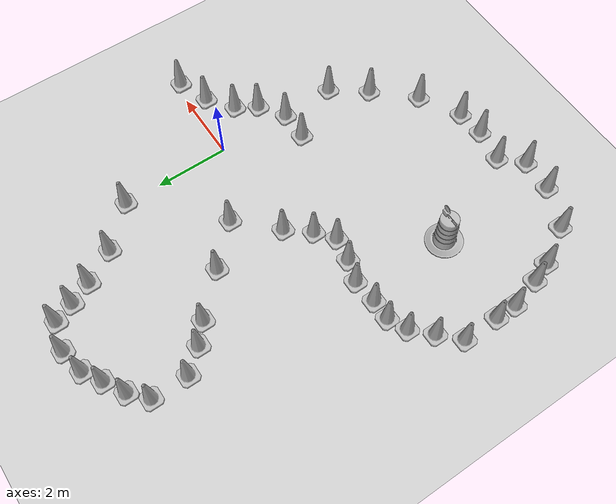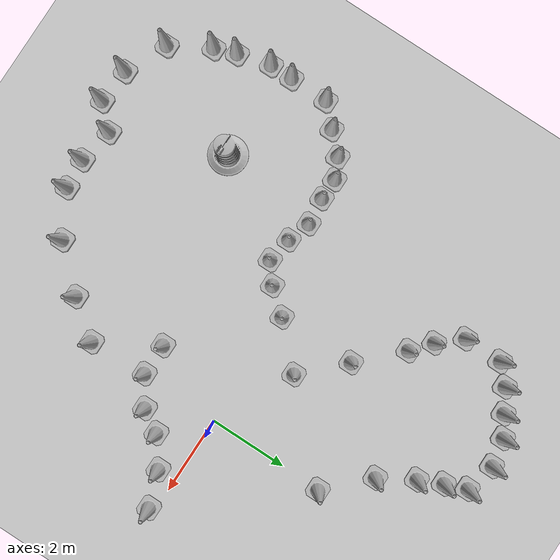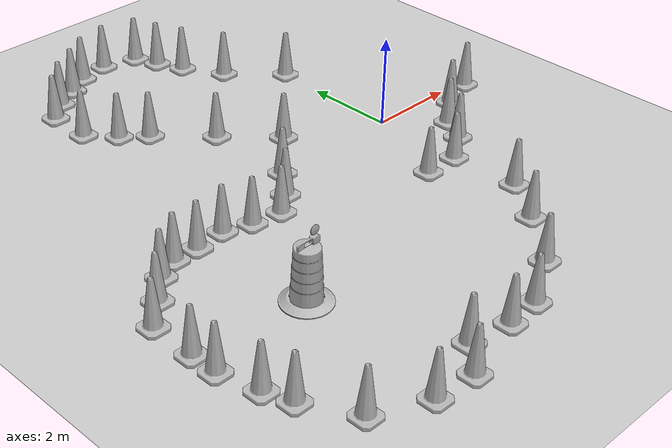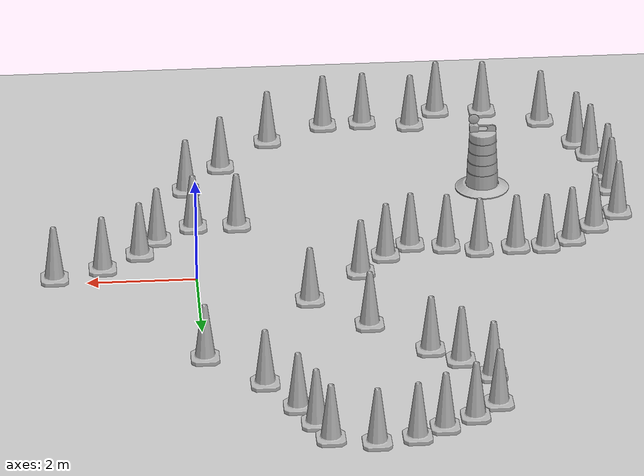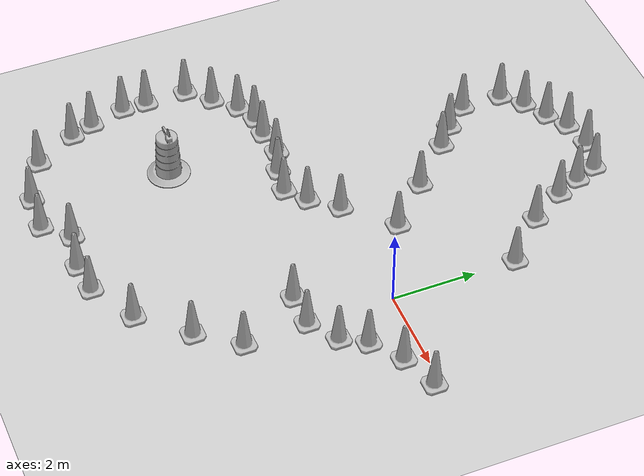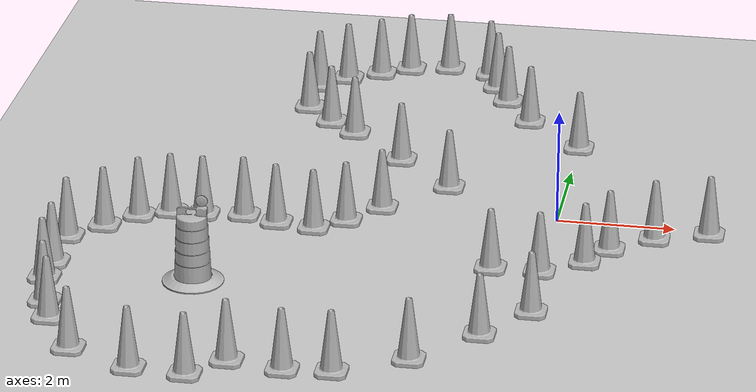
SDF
<sdf version="1.7">
 <world name="default">
  <light name="sun" type="directional">
   <pose>0 0 10 0 -0 0</pose>
   <diffuse>0.8 0.8 0.8 1</diffuse>
   <specular>0.2 0.2 0.2 1</specular>
   <attenuation>
    <range>1000</range>
    <constant>0.9</constant>
    <linear>0.01</linear>
    <quadratic>0.001</quadratic>
   </attenuation>
   <direction>-0.5 0.1 -0.9</direction>
   <spot><inner_angle>0</inner_angle><outer_angle>0</outer_angle><falloff>0</falloff></spot>
  </light>
  <model name="ground_plane">
   <static>1</static>
   <link name="link">
    <collision name="collision">
     <geometry><plane><normal>0 0 1</normal><size>100 100</size></plane></geometry>
     <surface>
      <contact><collide_bitmask>65535</collide_bitmask></contact>
      <friction><ode><mu>100</mu><mu2>50</mu2></ode></friction>
     </surface>
    </collision>
    <visual name="visual">
     <cast_shadows>0</cast_shadows>
     <geometry><plane><normal>0 0 1</normal><size>100 100</size></plane></geometry>
     <material>
      <script><uri>file://media/materials/scripts/gazebo.material</uri><name>Gazebo/Grey</name></script>
     </material>
    </visual>
   </link>
  </model>
  <gravity>0 0 -9.8</gravity>
  <magnetic_field>6e-06 2.3e-05 -4.2e-05</magnetic_field>
  <atmosphere type="adiabatic"/>
  <physics type="ode">
   <max_step_size>0.001</max_step_size>
   <real_time_factor>1</real_time_factor>
   <real_time_update_rate>1000</real_time_update_rate>
  </physics>
  <scene><ambient>0.4 0.4 0.4 1</ambient><background>0.7 0.7 0.7 1</background><shadows>1</shadows></scene>
  <audio><device>default</device></audio>
  <spherical_coordinates>
   <surface_model>EARTH_WGS84</surface_model>
   <latitude_deg>0</latitude_deg>
   <longitude_deg>0</longitude_deg>
   <elevation>0</elevation>
   <heading_deg>0</heading_deg>
  </spherical_coordinates>
  <model name="Construction Cone">
   <link name="link">
    <collision name="collision">
     <geometry>
      <mesh><scale>10 10 10</scale><uri>model://construction_cone/meshes/construction_cone.dae</uri></mesh>
     </geometry>
    </collision>
    <visual name="visual">
     <geometry>
      <mesh><scale>10 10 10</scale><uri>model://construction_cone/meshes/construction_cone.dae</uri></mesh>
     </geometry>
    </visual>
    <inertial>
     <inertia><ixx>1</ixx><ixy>0</ixy><ixz>0</ixz><iyy>1</iyy><iyz>0</iyz><izz>1</izz></inertia>
     <mass>1</mass>
    </inertial>
   </link>
   <pose>-0.846515 -2.02841 -0 0 -1e-06 0</pose>
  </model>
  <model name="Construction Cone_clone">
   <link name="link">
    <collision name="collision">
     <geometry>
      <mesh><scale>10 10 10</scale><uri>model://construction_cone/meshes/construction_cone.dae</uri></mesh>
     </geometry>
    </collision>
    <visual name="visual">
     <geometry>
      <mesh><scale>10 10 10</scale><uri>model://construction_cone/meshes/construction_cone.dae</uri></mesh>
     </geometry>
    </visual>
    <inertial>
     <inertia><ixx>1</ixx><ixy>0</ixy><ixz>0</ixz><iyy>1</iyy><iyz>0</iyz><izz>1</izz></inertia>
     <mass>1</mass>
    </inertial>
   </link>
   <pose>-0.033075 -2.02746 -0 0 -0 0</pose>
  </model>
  <model name="Construction Cone_clone_0">
   <link name="link">
    <collision name="collision">
     <geometry>
      <mesh><scale>10 10 10</scale><uri>model://construction_cone/meshes/construction_cone.dae</uri></mesh>
     </geometry>
    </collision>
    <visual name="visual">
     <geometry>
      <mesh><scale>10 10 10</scale><uri>model://construction_cone/meshes/construction_cone.dae</uri></mesh>
     </geometry>
    </visual>
    <inertial>
     <inertia><ixx>1</ixx><ixy>0</ixy><ixz>0</ixz><iyy>1</iyy><iyz>0</iyz><izz>1</izz></inertia>
     <mass>1</mass>
    </inertial>
   </link>
   <pose>0.654913 -1.5597 -0 0 -0 0</pose>
  </model>
  <model name="Construction Cone_clone_1">
   <link name="link">
    <collision name="collision">
     <geometry>
      <mesh><scale>10 10 10</scale><uri>model://construction_cone/meshes/construction_cone.dae</uri></mesh>
     </geometry>
    </collision>
    <visual name="visual">
     <geometry>
      <mesh><scale>10 10 10</scale><uri>model://construction_cone/meshes/construction_cone.dae</uri></mesh>
     </geometry>
    </visual>
    <inertial>
     <inertia><ixx>1</ixx><ixy>0</ixy><ixz>0</ixz><iyy>1</iyy><iyz>0</iyz><izz>1</izz></inertia>
     <mass>1</mass>
    </inertial>
   </link>
   <pose>1 -1 -0 0 -0 0</pose>
  </model>
  <model name="Construction Cone_clone_2">
   <link name="link">
    <collision name="collision">
     <geometry>
      <mesh><scale>10 10 10</scale><uri>model://construction_cone/meshes/construction_cone.dae</uri></mesh>
     </geometry>
    </collision>
    <visual name="visual">
     <geometry>
      <mesh><scale>10 10 10</scale><uri>model://construction_cone/meshes/construction_cone.dae</uri></mesh>
     </geometry>
    </visual>
    <inertial>
     <inertia><ixx>1</ixx><ixy>0</ixy><ixz>0</ixz><iyy>1</iyy><iyz>0</iyz><izz>1</izz></inertia>
     <mass>1</mass>
    </inertial>
   </link>
   <pose>1.69909 -0.477437 -0 0 -0 0</pose>
  </model>
  <model name="Construction Cone_clone_3">
   <link name="link">
    <collision name="collision">
     <geometry>
      <mesh><scale>10 10 10</scale><uri>model://construction_cone/meshes/construction_cone.dae</uri></mesh>
     </geometry>
    </collision>
    <visual name="visual">
     <geometry>
      <mesh><scale>10 10 10</scale><uri>model://construction_cone/meshes/construction_cone.dae</uri></mesh>
     </geometry>
    </visual>
    <inertial>
     <inertia><ixx>1</ixx><ixy>0</ixy><ixz>0</ixz><iyy>1</iyy><iyz>0</iyz><izz>1</izz></inertia>
     <mass>1</mass>
    </inertial>
   </link>
   <pose>2.58643 -0.159143 -7e-06 4e-06 1e-06 0</pose>
  </model>
  <model name="Construction Cone_clone_4">
   <link name="link">
    <collision name="collision">
     <geometry>
      <mesh><scale>10 10 10</scale><uri>model://construction_cone/meshes/construction_cone.dae</uri></mesh>
     </geometry>
    </collision>
    <visual name="visual">
     <geometry>
      <mesh><scale>10 10 10</scale><uri>model://construction_cone/meshes/construction_cone.dae</uri></mesh>
     </geometry>
    </visual>
    <inertial>
     <inertia><ixx>1</ixx><ixy>0</ixy><ixz>0</ixz><iyy>1</iyy><iyz>0</iyz><izz>1</izz></inertia>
     <mass>1</mass>
    </inertial>
   </link>
   <pose>-0 3 0 -0 -0 -0</pose>
  </model>
  <model name="Construction Cone_clone_5">
   <link name="link">
    <collision name="collision">
     <geometry>
      <mesh><scale>10 10 10</scale><uri>model://construction_cone/meshes/construction_cone.dae</uri></mesh>
     </geometry>
    </collision>
    <visual name="visual">
     <geometry>
      <mesh><scale>10 10 10</scale><uri>model://construction_cone/meshes/construction_cone.dae</uri></mesh>
     </geometry>
    </visual>
    <inertial>
     <inertia><ixx>1</ixx><ixy>0</ixy><ixz>0</ixz><iyy>1</iyy><iyz>0</iyz><izz>1</izz></inertia>
     <mass>1</mass>
    </inertial>
   </link>
   <pose>-2 1 -9e-06 2e-06 -0 0</pose>
  </model>
  <model name="Construction Cone_clone_6">
   <link name="link">
    <collision name="collision">
     <geometry>
      <mesh><scale>10 10 10</scale><uri>model://construction_cone/meshes/construction_cone.dae</uri></mesh>
     </geometry>
    </collision>
    <visual name="visual">
     <geometry>
      <mesh><scale>10 10 10</scale><uri>model://construction_cone/meshes/construction_cone.dae</uri></mesh>
     </geometry>
    </visual>
    <inertial>
     <inertia><ixx>1</ixx><ixy>0</ixy><ixz>0</ixz><iyy>1</iyy><iyz>0</iyz><izz>1</izz></inertia>
     <mass>1</mass>
    </inertial>
   </link>
   <pose>-3 2 -1e-06 2e-06 -0 0</pose>
  </model>
  <model name="Construction Cone_clone_7">
   <link name="link">
    <collision name="collision">
     <geometry>
      <mesh><scale>10 10 10</scale><uri>model://construction_cone/meshes/construction_cone.dae</uri></mesh>
     </geometry>
    </collision>
    <visual name="visual">
     <geometry>
      <mesh><scale>10 10 10</scale><uri>model://construction_cone/meshes/construction_cone.dae</uri></mesh>
     </geometry>
    </visual>
    <inertial>
     <inertia><ixx>1</ixx><ixy>0</ixy><ixz>0</ixz><iyy>1</iyy><iyz>0</iyz><izz>1</izz></inertia>
     <mass>1</mass>
    </inertial>
   </link>
   <pose>-5 4 -8e-06 1e-06 -0 0</pose>
  </model>
  <model name="Construction Cone_clone_8">
   <link name="link">
    <collision name="collision">
     <geometry>
      <mesh><scale>10 10 10</scale><uri>model://construction_cone/meshes/construction_cone.dae</uri></mesh>
     </geometry>
    </collision>
    <visual name="visual">
     <geometry>
      <mesh><scale>10 10 10</scale><uri>model://construction_cone/meshes/construction_cone.dae</uri></mesh>
     </geometry>
    </visual>
    <inertial>
     <inertia><ixx>1</ixx><ixy>0</ixy><ixz>0</ixz><iyy>1</iyy><iyz>0</iyz><izz>1</izz></inertia>
     <mass>1</mass>
    </inertial>
   </link>
   <pose>-2 6 0 -0 -0 -0</pose>
  </model>
  <model name="Construction Cone_clone_9">
   <link name="link">
    <collision name="collision">
     <geometry>
      <mesh><scale>10 10 10</scale><uri>model://construction_cone/meshes/construction_cone.dae</uri></mesh>
     </geometry>
    </collision>
    <visual name="visual">
     <geometry>
      <mesh><scale>10 10 10</scale><uri>model://construction_cone/meshes/construction_cone.dae</uri></mesh>
     </geometry>
    </visual>
    <inertial>
     <inertia><ixx>1</ixx><ixy>0</ixy><ixz>0</ixz><iyy>1</iyy><iyz>0</iyz><izz>1</izz></inertia>
     <mass>1</mass>
    </inertial>
   </link>
   <pose>-1 4 -0 0 -0 0</pose>
  </model>
  <model name="Construction Cone_clone_10">
   <link name="link">
    <collision name="collision">
     <geometry>
      <mesh><scale>10 10 10</scale><uri>model://construction_cone/meshes/construction_cone.dae</uri></mesh>
     </geometry>
    </collision>
    <visual name="visual">
     <geometry>
      <mesh><scale>10 10 10</scale><uri>model://construction_cone/meshes/construction_cone.dae</uri></mesh>
     </geometry>
    </visual>
    <inertial>
     <inertia><ixx>1</ixx><ixy>0</ixy><ixz>0</ixz><iyy>1</iyy><iyz>0</iyz><izz>1</izz></inertia>
     <mass>1</mass>
    </inertial>
   </link>
   <pose>-4 3 -0 0 -0 0</pose>
  </model>
  <model name="Construction Cone_clone_11">
   <link name="link">
    <collision name="collision">
     <geometry>
      <mesh><scale>10 10 10</scale><uri>model://construction_cone/meshes/construction_cone.dae</uri></mesh>
     </geometry>
    </collision>
    <visual name="visual">
     <geometry>
      <mesh><scale>10 10 10</scale><uri>model://construction_cone/meshes/construction_cone.dae</uri></mesh>
     </geometry>
    </visual>
    <inertial>
     <inertia><ixx>1</ixx><ixy>0</ixy><ixz>0</ixz><iyy>1</iyy><iyz>0</iyz><izz>1</izz></inertia>
     <mass>1</mass>
    </inertial>
   </link>
   <pose>-1.51487 4.85705 -0 -0 -0 -0</pose>
  </model>
  <model name="Construction Cone_clone_12">
   <link name="link">
    <collision name="collision">
     <geometry>
      <mesh><scale>10 10 10</scale><uri>model://construction_cone/meshes/construction_cone.dae</uri></mesh>
     </geometry>
    </collision>
    <visual name="visual">
     <geometry>
      <mesh><scale>10 10 10</scale><uri>model://construction_cone/meshes/construction_cone.dae</uri></mesh>
     </geometry>
    </visual>
    <inertial>
     <inertia><ixx>1</ixx><ixy>0</ixy><ixz>0</ixz><iyy>1</iyy><iyz>0</iyz><izz>1</izz></inertia>
     <mass>1</mass>
    </inertial>
   </link>
   <pose>-3 0 -1e-06 1e-06 -2e-06 -0</pose>
  </model>
  <model name="Construction Cone_clone_13">
   <link name="link">
    <collision name="collision">
     <geometry>
      <mesh><scale>10 10 10</scale><uri>model://construction_cone/meshes/construction_cone.dae</uri></mesh>
     </geometry>
    </collision>
    <visual name="visual">
     <geometry>
      <mesh><scale>10 10 10</scale><uri>model://construction_cone/meshes/construction_cone.dae</uri></mesh>
     </geometry>
    </visual>
    <inertial>
     <inertia><ixx>1</ixx><ixy>0</ixy><ixz>0</ixz><iyy>1</iyy><iyz>0</iyz><izz>1</izz></inertia>
     <mass>1</mass>
    </inertial>
   </link>
   <pose>-4 -1 -1e-05 0 -0 0</pose>
  </model>
  <model name="Construction Cone_clone_14">
   <link name="link">
    <collision name="collision">
     <geometry>
      <mesh><scale>10 10 10</scale><uri>model://construction_cone/meshes/construction_cone.dae</uri></mesh>
     </geometry>
    </collision>
    <visual name="visual">
     <geometry>
      <mesh><scale>10 10 10</scale><uri>model://construction_cone/meshes/construction_cone.dae</uri></mesh>
     </geometry>
    </visual>
    <inertial>
     <inertia><ixx>1</ixx><ixy>0</ixy><ixz>0</ixz><iyy>1</iyy><iyz>0</iyz><izz>1</izz></inertia>
     <mass>1</mass>
    </inertial>
   </link>
   <pose>-5.25335 -0.698695 0 -0 -0 -0</pose>
  </model>
  <model name="Construction Cone_clone_15">
   <link name="link">
    <collision name="collision">
     <geometry>
      <mesh><scale>10 10 10</scale><uri>model://construction_cone/meshes/construction_cone.dae</uri></mesh>
     </geometry>
    </collision>
    <visual name="visual">
     <geometry>
      <mesh><scale>10 10 10</scale><uri>model://construction_cone/meshes/construction_cone.dae</uri></mesh>
     </geometry>
    </visual>
    <inertial>
     <inertia><ixx>1</ixx><ixy>0</ixy><ixz>0</ixz><iyy>1</iyy><iyz>0</iyz><izz>1</izz></inertia>
     <mass>1</mass>
    </inertial>
   </link>
   <pose>-7.00429 -1.00409 -0 0 0 -0.000448</pose>
  </model>
  <model name="Construction Cone_clone_16">
   <link name="link">
    <collision name="collision">
     <geometry>
      <mesh><scale>10 10 10</scale><uri>model://construction_cone/meshes/construction_cone.dae</uri></mesh>
     </geometry>
    </collision>
    <visual name="visual">
     <geometry>
      <mesh><scale>10 10 10</scale><uri>model://construction_cone/meshes/construction_cone.dae</uri></mesh>
     </geometry>
    </visual>
    <inertial>
     <inertia><ixx>1</ixx><ixy>0</ixy><ixz>0</ixz><iyy>1</iyy><iyz>0</iyz><izz>1</izz></inertia>
     <mass>1</mass>
    </inertial>
   </link>
   <pose>-8 -2 -8e-06 1e-06 -0 0</pose>
  </model>
  <model name="Construction Cone_clone_17">
   <link name="link">
    <collision name="collision">
     <geometry>
      <mesh><scale>10 10 10</scale><uri>model://construction_cone/meshes/construction_cone.dae</uri></mesh>
     </geometry>
    </collision>
    <visual name="visual">
     <geometry>
      <mesh><scale>10 10 10</scale><uri>model://construction_cone/meshes/construction_cone.dae</uri></mesh>
     </geometry>
    </visual>
    <inertial>
     <inertia><ixx>1</ixx><ixy>0</ixy><ixz>0</ixz><iyy>1</iyy><iyz>0</iyz><izz>1</izz></inertia>
     <mass>1</mass>
    </inertial>
   </link>
   <pose>-8 -3 -0 1e-06 -0 0</pose>
  </model>
  <model name="Construction Cone_clone_18">
   <link name="link">
    <collision name="collision">
     <geometry>
      <mesh><scale>10 10 10</scale><uri>model://construction_cone/meshes/construction_cone.dae</uri></mesh>
     </geometry>
    </collision>
    <visual name="visual">
     <geometry>
      <mesh><scale>10 10 10</scale><uri>model://construction_cone/meshes/construction_cone.dae</uri></mesh>
     </geometry>
    </visual>
    <inertial>
     <inertia><ixx>1</ixx><ixy>0</ixy><ixz>0</ixz><iyy>1</iyy><iyz>0</iyz><izz>1</izz></inertia>
     <mass>1</mass>
    </inertial>
   </link>
   <pose>-8 -3.59598 -9e-06 4e-06 -0 0</pose>
  </model>
  <model name="Construction Cone_clone_19">
   <link name="link">
    <collision name="collision">
     <geometry>
      <mesh><scale>10 10 10</scale><uri>model://construction_cone/meshes/construction_cone.dae</uri></mesh>
     </geometry>
    </collision>
    <visual name="visual">
     <geometry>
      <mesh><scale>10 10 10</scale><uri>model://construction_cone/meshes/construction_cone.dae</uri></mesh>
     </geometry>
    </visual>
    <inertial>
     <inertia><ixx>1</ixx><ixy>0</ixy><ixz>0</ixz><iyy>1</iyy><iyz>0</iyz><izz>1</izz></inertia>
     <mass>1</mass>
    </inertial>
   </link>
   <pose>-7.57471 -5 -0 0 -0 0</pose>
  </model>
  <model name="Construction Cone_clone_20">
   <link name="link">
    <collision name="collision">
     <geometry>
      <mesh><scale>10 10 10</scale><uri>model://construction_cone/meshes/construction_cone.dae</uri></mesh>
     </geometry>
    </collision>
    <visual name="visual">
     <geometry>
      <mesh><scale>10 10 10</scale><uri>model://construction_cone/meshes/construction_cone.dae</uri></mesh>
     </geometry>
    </visual>
    <inertial>
     <inertia><ixx>1</ixx><ixy>0</ixy><ixz>0</ixz><iyy>1</iyy><iyz>0</iyz><izz>1</izz></inertia>
     <mass>1</mass>
    </inertial>
   </link>
   <pose>-7 -6 -0 0 -0 0</pose>
  </model>
  <model name="Construction Cone_clone_21">
   <link name="link">
    <collision name="collision">
     <geometry>
      <mesh><scale>10 10 10</scale><uri>model://construction_cone/meshes/construction_cone.dae</uri></mesh>
     </geometry>
    </collision>
    <visual name="visual">
     <geometry>
      <mesh><scale>10 10 10</scale><uri>model://construction_cone/meshes/construction_cone.dae</uri></mesh>
     </geometry>
    </visual>
    <inertial>
     <inertia><ixx>1</ixx><ixy>0</ixy><ixz>0</ixz><iyy>1</iyy><iyz>0</iyz><izz>1</izz></inertia>
     <mass>1</mass>
    </inertial>
   </link>
   <pose>-7.77798 -4.44823 -1e-06 1e-06 -2e-06 -0</pose>
  </model>
  <model name="Construction Cone_clone_22">
   <link name="link">
    <collision name="collision">
     <geometry>
      <mesh><scale>10 10 10</scale><uri>model://construction_cone/meshes/construction_cone.dae</uri></mesh>
     </geometry>
    </collision>
    <visual name="visual">
     <geometry>
      <mesh><scale>10 10 10</scale><uri>model://construction_cone/meshes/construction_cone.dae</uri></mesh>
     </geometry>
    </visual>
    <inertial>
     <inertia><ixx>1</ixx><ixy>0</ixy><ixz>0</ixz><iyy>1</iyy><iyz>0</iyz><izz>1</izz></inertia>
     <mass>1</mass>
    </inertial>
   </link>
   <pose>-7.49112 -1.49292 -1e-06 4e-06 -0 0</pose>
  </model>
  <model name="Construction Cone_clone_23">
   <link name="link">
    <collision name="collision">
     <geometry>
      <mesh><scale>10 10 10</scale><uri>model://construction_cone/meshes/construction_cone.dae</uri></mesh>
     </geometry>
    </collision>
    <visual name="visual">
     <geometry>
      <mesh><scale>10 10 10</scale><uri>model://construction_cone/meshes/construction_cone.dae</uri></mesh>
     </geometry>
    </visual>
    <inertial>
     <inertia><ixx>1</ixx><ixy>0</ixy><ixz>0</ixz><iyy>1</iyy><iyz>0</iyz><izz>1</izz></inertia>
     <mass>1</mass>
    </inertial>
   </link>
   <pose>-6.50124 -0.764945 0 -0 -0 -0.000532</pose>
  </model>
  <model name="Construction Cone_clone_24">
   <link name="link">
    <collision name="collision">
     <geometry>
      <mesh><scale>10 10 10</scale><uri>model://construction_cone/meshes/construction_cone.dae</uri></mesh>
     </geometry>
    </collision>
    <visual name="visual">
     <geometry>
      <mesh><scale>10 10 10</scale><uri>model://construction_cone/meshes/construction_cone.dae</uri></mesh>
     </geometry>
    </visual>
    <inertial>
     <inertia><ixx>1</ixx><ixy>0</ixy><ixz>0</ixz><iyy>1</iyy><iyz>0</iyz><izz>1</izz></inertia>
     <mass>1</mass>
    </inertial>
   </link>
   <pose>-5.94118 -0.77057 -9e-06 -2e-06 -0 -0</pose>
  </model>
  <model name="Construction Cone_clone_25">
   <link name="link">
    <collision name="collision">
     <geometry>
      <mesh><scale>10 10 10</scale><uri>model://construction_cone/meshes/construction_cone.dae</uri></mesh>
     </geometry>
    </collision>
    <visual name="visual">
     <geometry>
      <mesh><scale>10 10 10</scale><uri>model://construction_cone/meshes/construction_cone.dae</uri></mesh>
     </geometry>
    </visual>
    <inertial>
     <inertia><ixx>1</ixx><ixy>0</ixy><ixz>0</ixz><iyy>1</iyy><iyz>0</iyz><izz>1</izz></inertia>
     <mass>1</mass>
    </inertial>
   </link>
   <pose>-4.6592 -0.891057 -0 1e-06 -0 0</pose>
  </model>
  <model name="Construction Cone_clone_26">
   <link name="link">
    <collision name="collision">
     <geometry>
      <mesh><scale>10 10 10</scale><uri>model://construction_cone/meshes/construction_cone.dae</uri></mesh>
     </geometry>
    </collision>
    <visual name="visual">
     <geometry>
      <mesh><scale>10 10 10</scale><uri>model://construction_cone/meshes/construction_cone.dae</uri></mesh>
     </geometry>
    </visual>
    <inertial>
     <inertia><ixx>1</ixx><ixy>0</ixy><ixz>0</ixz><iyy>1</iyy><iyz>0</iyz><izz>1</izz></inertia>
     <mass>1</mass>
    </inertial>
   </link>
   <pose>-3.51251 -0.611908 -6e-06 2e-06 -0 0</pose>
  </model>
  <model name="Construction Barrel">
   <link name="link">
    <inertial>
     <pose>0 0 0.4 0 -0 0</pose>
     <mass>500</mass>
     <inertia><ixx>51.2096</ixx><iyy>51.2096</iyy><izz>25</izz><ixy>0</ixy><ixz>0</ixz><iyz>0</iyz></inertia>
    </inertial>
    <collision name="collision">
     <geometry><mesh><uri>model://construction_barrel/meshes/construction_barrel.dae</uri></mesh></geometry>
    </collision>
    <visual name="visual">
     <geometry><mesh><uri>model://construction_barrel/meshes/construction_barrel.dae</uri></mesh></geometry>
    </visual>
   </link>
   <pose>-5.58054 -3.27454 -2e-06 7e-06 -4e-06 -2.2e-05</pose>
  </model>
  <model name="Construction Cone_clone_27">
   <link name="link">
    <collision name="collision">
     <geometry>
      <mesh><scale>10 10 10</scale><uri>model://construction_cone/meshes/construction_cone.dae</uri></mesh>
     </geometry>
    </collision>
    <visual name="visual">
     <geometry>
      <mesh><scale>10 10 10</scale><uri>model://construction_cone/meshes/construction_cone.dae</uri></mesh>
     </geometry>
    </visual>
    <inertial>
     <inertia><ixx>1</ixx><ixy>0</ixy><ixz>0</ixz><iyy>1</iyy><iyz>0</iyz><izz>1</izz></inertia>
     <mass>1</mass>
    </inertial>
   </link>
   <pose>-5.91233 -6.50011 -0 1e-06 -0 0</pose>
  </model>
  <model name="Construction Cone_clone_28">
   <link name="link">
    <collision name="collision">
     <geometry>
      <mesh><scale>10 10 10</scale><uri>model://construction_cone/meshes/construction_cone.dae</uri></mesh>
     </geometry>
    </collision>
    <visual name="visual">
     <geometry>
      <mesh><scale>10 10 10</scale><uri>model://construction_cone/meshes/construction_cone.dae</uri></mesh>
     </geometry>
    </visual>
    <inertial>
     <inertia><ixx>1</ixx><ixy>0</ixy><ixz>0</ixz><iyy>1</iyy><iyz>0</iyz><izz>1</izz></inertia>
     <mass>1</mass>
    </inertial>
   </link>
   <pose>-5 -6.56498 -0 0 -0 0</pose>
  </model>
  <model name="Construction Cone_clone_29">
   <link name="link">
    <collision name="collision">
     <geometry>
      <mesh><scale>10 10 10</scale><uri>model://construction_cone/meshes/construction_cone.dae</uri></mesh>
     </geometry>
    </collision>
    <visual name="visual">
     <geometry>
      <mesh><scale>10 10 10</scale><uri>model://construction_cone/meshes/construction_cone.dae</uri></mesh>
     </geometry>
    </visual>
    <inertial>
     <inertia><ixx>1</ixx><ixy>0</ixy><ixz>0</ixz><iyy>1</iyy><iyz>0</iyz><izz>1</izz></inertia>
     <mass>1</mass>
    </inertial>
   </link>
   <pose>-4.44986 -6 -0 0 -0 0</pose>
  </model>
  <model name="Construction Cone_clone_30">
   <link name="link">
    <collision name="collision">
     <geometry>
      <mesh><scale>10 10 10</scale><uri>model://construction_cone/meshes/construction_cone.dae</uri></mesh>
     </geometry>
    </collision>
    <visual name="visual">
     <geometry>
      <mesh><scale>10 10 10</scale><uri>model://construction_cone/meshes/construction_cone.dae</uri></mesh>
     </geometry>
    </visual>
    <inertial>
     <inertia><ixx>1</ixx><ixy>0</ixy><ixz>0</ixz><iyy>1</iyy><iyz>0</iyz><izz>1</izz></inertia>
     <mass>1</mass>
    </inertial>
   </link>
   <pose>-3.53325 -6.16425 0 -0 -0 -0</pose>
  </model>
  <model name="Construction Cone_clone_31">
   <link name="link">
    <collision name="collision">
     <geometry>
      <mesh><scale>10 10 10</scale><uri>model://construction_cone/meshes/construction_cone.dae</uri></mesh>
     </geometry>
    </collision>
    <visual name="visual">
     <geometry>
      <mesh><scale>10 10 10</scale><uri>model://construction_cone/meshes/construction_cone.dae</uri></mesh>
     </geometry>
    </visual>
    <inertial>
     <inertia><ixx>1</ixx><ixy>0</ixy><ixz>0</ixz><iyy>1</iyy><iyz>0</iyz><izz>1</izz></inertia>
     <mass>1</mass>
    </inertial>
   </link>
   <pose>-2.75944 -6.10141 -0 0 -1e-06 0</pose>
  </model>
  <model name="Construction Cone_clone_32">
   <link name="link">
    <collision name="collision">
     <geometry>
      <mesh><scale>10 10 10</scale><uri>model://construction_cone/meshes/construction_cone.dae</uri></mesh>
     </geometry>
    </collision>
    <visual name="visual">
     <geometry>
      <mesh><scale>10 10 10</scale><uri>model://construction_cone/meshes/construction_cone.dae</uri></mesh>
     </geometry>
    </visual>
    <inertial>
     <inertia><ixx>1</ixx><ixy>0</ixy><ixz>0</ixz><iyy>1</iyy><iyz>0</iyz><izz>1</izz></inertia>
     <mass>1</mass>
    </inertial>
   </link>
   <pose>-0.673775 -4.45127 -0 0 -0 0</pose>
  </model>
  <model name="Construction Cone_clone_33">
   <link name="link">
    <collision name="collision">
     <geometry>
      <mesh><scale>10 10 10</scale><uri>model://construction_cone/meshes/construction_cone.dae</uri></mesh>
     </geometry>
    </collision>
    <visual name="visual">
     <geometry>
      <mesh><scale>10 10 10</scale><uri>model://construction_cone/meshes/construction_cone.dae</uri></mesh>
     </geometry>
    </visual>
    <inertial>
     <inertia><ixx>1</ixx><ixy>0</ixy><ixz>0</ixz><iyy>1</iyy><iyz>0</iyz><izz>1</izz></inertia>
     <mass>1</mass>
    </inertial>
   </link>
   <pose>0.028466 -3.52122 0 -0 -0 -0</pose>
  </model>
  <model name="Construction Cone_clone_34">
   <link name="link">
    <collision name="collision">
     <geometry>
      <mesh><scale>10 10 10</scale><uri>model://construction_cone/meshes/construction_cone.dae</uri></mesh>
     </geometry>
    </collision>
    <visual name="visual">
     <geometry>
      <mesh><scale>10 10 10</scale><uri>model://construction_cone/meshes/construction_cone.dae</uri></mesh>
     </geometry>
    </visual>
    <inertial>
     <inertia><ixx>1</ixx><ixy>0</ixy><ixz>0</ixz><iyy>1</iyy><iyz>0</iyz><izz>1</izz></inertia>
     <mass>1</mass>
    </inertial>
   </link>
   <pose>-1.63891 -5.48718 -0 0 -0 0</pose>
  </model>
  <model name="Construction Cone_clone_35">
   <link name="link">
    <collision name="collision">
     <geometry>
      <mesh><scale>10 10 10</scale><uri>model://construction_cone/meshes/construction_cone.dae</uri></mesh>
     </geometry>
    </collision>
    <visual name="visual">
     <geometry>
      <mesh><scale>10 10 10</scale><uri>model://construction_cone/meshes/construction_cone.dae</uri></mesh>
     </geometry>
    </visual>
    <inertial>
     <inertia><ixx>1</ixx><ixy>0</ixy><ixz>0</ixz><iyy>1</iyy><iyz>0</iyz><izz>1</izz></inertia>
     <mass>1</mass>
    </inertial>
   </link>
   <pose>-5 5 -0 0 -0 0</pose>
  </model>
  <model name="Construction Cone_clone_36">
   <link name="link">
    <collision name="collision">
     <geometry>
      <mesh><scale>10 10 10</scale><uri>model://construction_cone/meshes/construction_cone.dae</uri></mesh>
     </geometry>
    </collision>
    <visual name="visual">
     <geometry>
      <mesh><scale>10 10 10</scale><uri>model://construction_cone/meshes/construction_cone.dae</uri></mesh>
     </geometry>
    </visual>
    <inertial>
     <inertia><ixx>1</ixx><ixy>0</ixy><ixz>0</ixz><iyy>1</iyy><iyz>0</iyz><izz>1</izz></inertia>
     <mass>1</mass>
    </inertial>
   </link>
   <pose>-4.54747 5.4244 -8e-06 2e-06 -0 0</pose>
  </model>
  <model name="Construction Cone_clone_37">
   <link name="link">
    <collision name="collision">
     <geometry>
      <mesh><scale>10 10 10</scale><uri>model://construction_cone/meshes/construction_cone.dae</uri></mesh>
     </geometry>
    </collision>
    <visual name="visual">
     <geometry>
      <mesh><scale>10 10 10</scale><uri>model://construction_cone/meshes/construction_cone.dae</uri></mesh>
     </geometry>
    </visual>
    <inertial>
     <inertia><ixx>1</ixx><ixy>0</ixy><ixz>0</ixz><iyy>1</iyy><iyz>0</iyz><izz>1</izz></inertia>
     <mass>1</mass>
    </inertial>
   </link>
   <pose>-3.99004 5.7475 -0 0 -0 0.001062</pose>
  </model>
  <model name="Construction Cone_clone_38">
   <link name="link">
    <collision name="collision">
     <geometry>
      <mesh><scale>10 10 10</scale><uri>model://construction_cone/meshes/construction_cone.dae</uri></mesh>
     </geometry>
    </collision>
    <visual name="visual">
     <geometry>
      <mesh><scale>10 10 10</scale><uri>model://construction_cone/meshes/construction_cone.dae</uri></mesh>
     </geometry>
    </visual>
    <inertial>
     <inertia><ixx>1</ixx><ixy>0</ixy><ixz>0</ixz><iyy>1</iyy><iyz>0</iyz><izz>1</izz></inertia>
     <mass>1</mass>
    </inertial>
   </link>
   <pose>-3.48685 6.05305 -1e-06 4e-06 -0 -0.000339</pose>
  </model>
  <model name="Construction Cone_clone_39">
   <link name="link">
    <collision name="collision">
     <geometry>
      <mesh><scale>10 10 10</scale><uri>model://construction_cone/meshes/construction_cone.dae</uri></mesh>
     </geometry>
    </collision>
    <visual name="visual">
     <geometry>
      <mesh><scale>10 10 10</scale><uri>model://construction_cone/meshes/construction_cone.dae</uri></mesh>
     </geometry>
    </visual>
    <inertial>
     <inertia><ixx>1</ixx><ixy>0</ixy><ixz>0</ixz><iyy>1</iyy><iyz>0</iyz><izz>1</izz></inertia>
     <mass>1</mass>
    </inertial>
   </link>
   <pose>-2.77957 6.19558 -0 0 -0 0</pose>
  </model>
  <model name="Construction Cone_clone_40">
   <link name="link">
    <collision name="collision">
     <geometry>
      <mesh><scale>10 10 10</scale><uri>model://construction_cone/meshes/construction_cone.dae</uri></mesh>
     </geometry>
    </collision>
    <visual name="visual">
     <geometry>
      <mesh><scale>10 10 10</scale><uri>model://construction_cone/meshes/construction_cone.dae</uri></mesh>
     </geometry>
    </visual>
    <inertial>
     <inertia><ixx>1</ixx><ixy>0</ixy><ixz>0</ixz><iyy>1</iyy><iyz>0</iyz><izz>1</izz></inertia>
     <mass>1</mass>
    </inertial>
   </link>
   <pose>-4.49866 3.4228 -0 0 -0 0</pose>
  </model>
  <model name="Construction Cone_clone_41">
   <link name="link">
    <collision name="collision">
     <geometry>
      <mesh><scale>10 10 10</scale><uri>model://construction_cone/meshes/construction_cone.dae</uri></mesh>
     </geometry>
    </collision>
    <visual name="visual">
     <geometry>
      <mesh><scale>10 10 10</scale><uri>model://construction_cone/meshes/construction_cone.dae</uri></mesh>
     </geometry>
    </visual>
    <inertial>
     <inertia><ixx>1</ixx><ixy>0</ixy><ixz>0</ixz><iyy>1</iyy><iyz>0</iyz><izz>1</izz></inertia>
     <mass>1</mass>
    </inertial>
   </link>
   <pose>-1.78696 5.45207 0 -0 -0 -0</pose>
  </model>
 </world>
</sdf>
